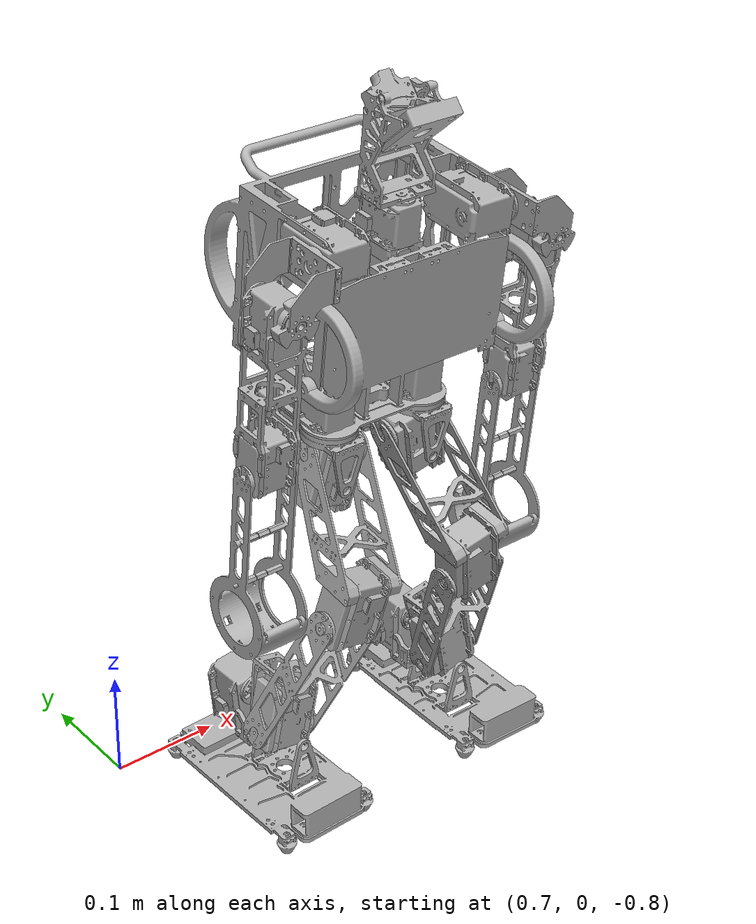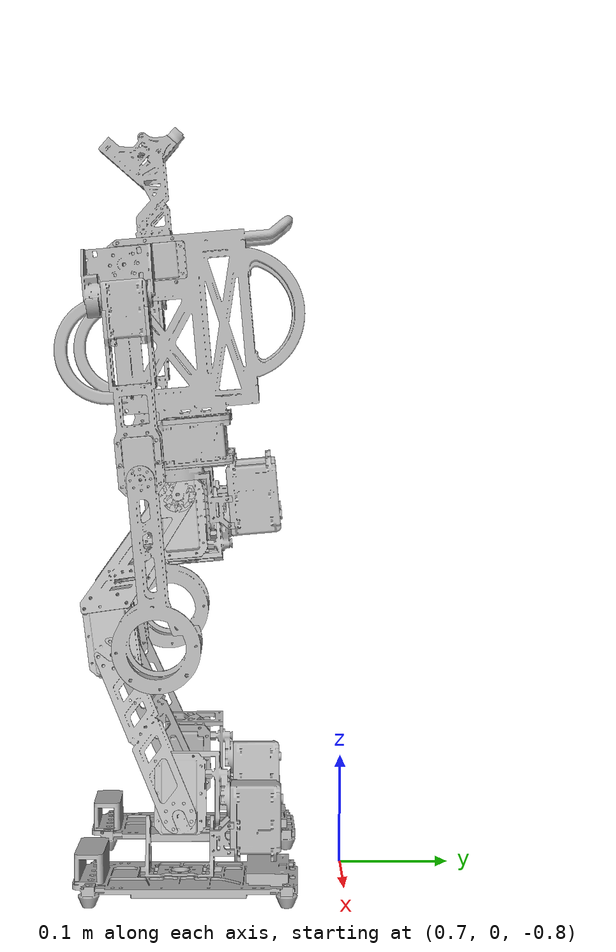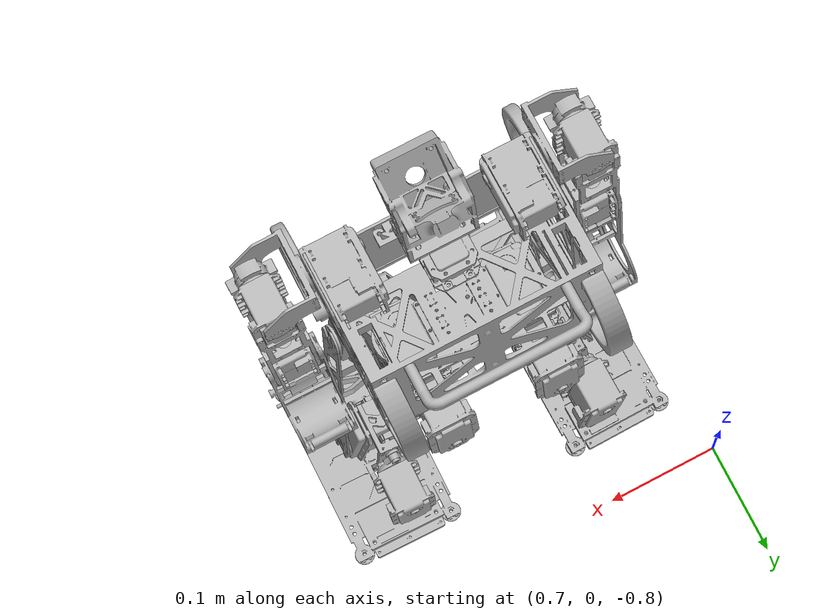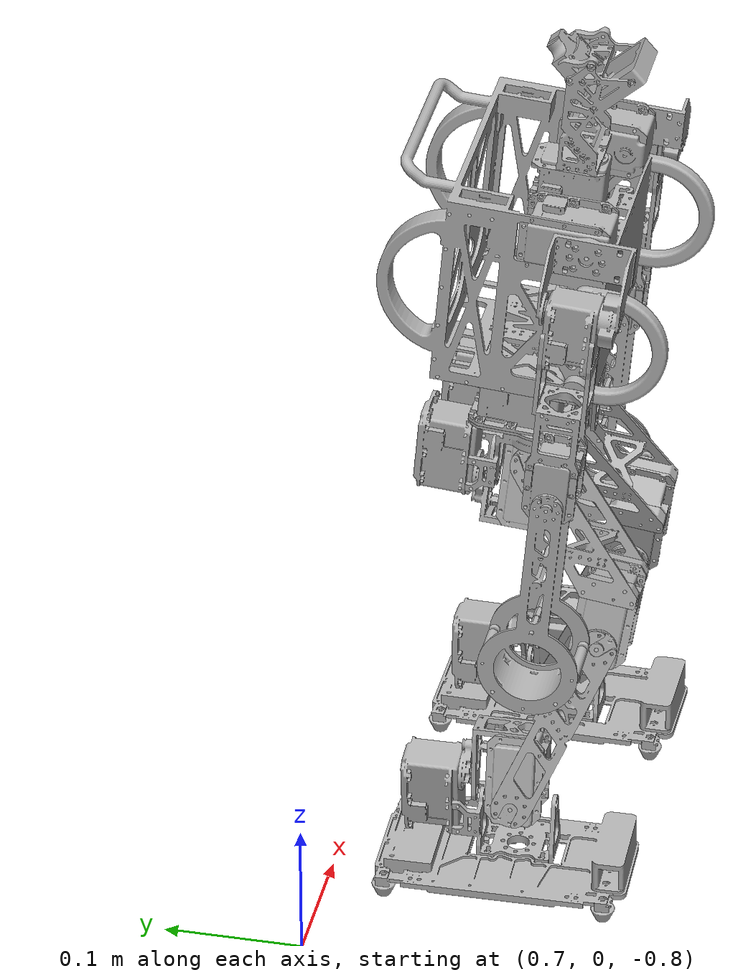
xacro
<?xml version="1.0" ?>
<robot name="robit_humanoid_offset_22DOF" xmlns:xacro="http://www.ros.org/wiki/xacro">

<xacro:include filename="$(find robit_humanoid_offset_22DOF_description)/urdf/materials.xacro" />
<xacro:include filename="$(find robit_humanoid_offset_22DOF_description)/urdf/robit_humanoid_offset_22DOF.trans" />
<xacro:include filename="$(find robit_humanoid_offset_22DOF_description)/urdf/robit_humanoid_offset_22DOF.gazebo" />
<link name="base_link">
  <inertial>
    <origin xyz="0.8686704659900684 -0.12225178221029383 -0.3166063048759885" rpy="0 0 0"/>
    <mass value="0.7575472164622242"/>
    <inertia ixx="0.004242" iyy="0.005737" izz="0.005559" ixy="-2e-06" iyz="-0.000575" ixz="6e-06"/>
  </inertial>
  <visual>
    <origin xyz="0 0 0" rpy="0 0 0"/>
    <geometry>
      <mesh filename="file://$(find robit_humanoid_offset_22DOF_description)/meshes/base_link.stl" scale="0.001 0.001 0.001"/>
    </geometry>
    <material name="silver"/>
  </visual>
  <collision>
    <origin xyz="0 0 0" rpy="0 0 0"/>
    <geometry>
      <mesh filename="file://$(find robit_humanoid_offset_22DOF_description)/meshes/base_link.stl" scale="0.001 0.001 0.001"/>
    </geometry>
  </collision>
</link>

<link name="MX_1_1">
  <inertial>
    <origin xyz="0.017028076208026932 0.020926648516215868 -0.015751572139332204" rpy="0 0 0"/>
    <mass value="0.554105246676411"/>
    <inertia ixx="0.000191" iyy="0.000126" izz="0.000223" ixy="-2e-06" iyz="-8e-06" ixz="0.0"/>
  </inertial>
  <visual>
    <origin xyz="-0.78262 0.187467 0.237925" rpy="0 0 0"/>
    <geometry>
      <mesh filename="file://$(find robit_humanoid_offset_22DOF_description)/meshes/MX_1_1.stl" scale="0.001 0.001 0.001"/>
    </geometry>
    <material name="silver"/>
  </visual>
  <collision>
    <origin xyz="-0.78262 0.187467 0.237925" rpy="0 0 0"/>
    <geometry>
      <mesh filename="file://$(find robit_humanoid_offset_22DOF_description)/meshes/MX_1_1.stl" scale="0.001 0.001 0.001"/>
    </geometry>
  </collision>
</link>

<link name="MX_0_1">
  <inertial>
    <origin xyz="-0.017191337786963357 0.021127357019474907 -0.015299758735974472" rpy="0 0 0"/>
    <mass value="0.5541052761471819"/>
    <inertia ixx="0.000191" iyy="0.000126" izz="0.000222" ixy="2e-06" iyz="-9e-06" ixz="0.0"/>
  </inertial>
  <visual>
    <origin xyz="-0.955618 0.187467 0.238835" rpy="0 0 0"/>
    <geometry>
      <mesh filename="file://$(find robit_humanoid_offset_22DOF_description)/meshes/MX_0_1.stl" scale="0.001 0.001 0.001"/>
    </geometry>
    <material name="silver"/>
  </visual>
  <collision>
    <origin xyz="-0.955618 0.187467 0.238835" rpy="0 0 0"/>
    <geometry>
      <mesh filename="file://$(find robit_humanoid_offset_22DOF_description)/meshes/MX_0_1.stl" scale="0.001 0.001 0.001"/>
    </geometry>
  </collision>
</link>

<link name="MX_12_1">
  <inertial>
    <origin xyz="-0.01707394332128609 0.018139780080411533 0.018853103619291822" rpy="0 0 0"/>
    <mass value="0.5541053265332864"/>
    <inertia ixx="0.000223" iyy="0.000126" izz="0.00019" ixy="-1e-06" iyz="-8e-06" ixz="-0.0"/>
  </inertial>
  <visual>
    <origin xyz="-0.930474 0.147652 0.418178" rpy="0 0 0"/>
    <geometry>
      <mesh filename="file://$(find robit_humanoid_offset_22DOF_description)/meshes/MX_12_1.stl" scale="0.001 0.001 0.001"/>
    </geometry>
    <material name="silver"/>
  </visual>
  <collision>
    <origin xyz="-0.930474 0.147652 0.418178" rpy="0 0 0"/>
    <geometry>
      <mesh filename="file://$(find robit_humanoid_offset_22DOF_description)/meshes/MX_12_1.stl" scale="0.001 0.001 0.001"/>
    </geometry>
  </collision>
</link>

<link name="MX_13_1">
  <inertial>
    <origin xyz="-0.01707369816831017 0.018139780067854078 0.01885252307943458" rpy="0 0 0"/>
    <mass value="0.554105326533287"/>
    <inertia ixx="0.000223" iyy="0.000126" izz="0.00019" ixy="-1e-06" iyz="-8e-06" ixz="-0.0"/>
  </inertial>
  <visual>
    <origin xyz="-0.840475 0.147652 0.417704" rpy="0 0 0"/>
    <geometry>
      <mesh filename="file://$(find robit_humanoid_offset_22DOF_description)/meshes/MX_13_1.stl" scale="0.001 0.001 0.001"/>
    </geometry>
    <material name="silver"/>
  </visual>
  <collision>
    <origin xyz="-0.840475 0.147652 0.417704" rpy="0 0 0"/>
    <geometry>
      <mesh filename="file://$(find robit_humanoid_offset_22DOF_description)/meshes/MX_13_1.stl" scale="0.001 0.001 0.001"/>
    </geometry>
  </collision>
</link>

<link name="MX_22_1">
  <inertial>
    <origin xyz="0.0150852798807658 0.01469623858131483 0.016166391724097395" rpy="0 0 0"/>
    <mass value="0.33837900664078474"/>
    <inertia ixx="9.5e-05" iyy="5.8e-05" izz="8.1e-05" ixy="-0.0" iyz="-1e-06" ixz="-0.0"/>
  </inertial>
  <visual>
    <origin xyz="-0.853969 0.169212 0.266818" rpy="0 0 0"/>
    <geometry>
      <mesh filename="file://$(find robit_humanoid_offset_22DOF_description)/meshes/MX_22_1.stl" scale="0.001 0.001 0.001"/>
    </geometry>
    <material name="silver"/>
  </visual>
  <collision>
    <origin xyz="-0.853969 0.169212 0.266818" rpy="0 0 0"/>
    <geometry>
      <mesh filename="file://$(find robit_humanoid_offset_22DOF_description)/meshes/MX_22_1.stl" scale="0.001 0.001 0.001"/>
    </geometry>
  </collision>
</link>

<link name="Head_1">
  <inertial>
    <origin xyz="0.0003136016932622221 -0.012661751483803496 0.057984005762357516" rpy="0 0 0"/>
    <mass value="0.11392178679543014"/>
    <inertia ixx="0.00011" iyy="0.000112" izz="6.2e-05" ixy="0.0" iyz="5e-06" ixz="-0.0"/>
  </inertial>
  <visual>
    <origin xyz="-0.869131 0.155818 0.236012" rpy="0 0 0"/>
    <geometry>
      <mesh filename="file://$(find robit_humanoid_offset_22DOF_description)/meshes/Head_1.stl" scale="0.001 0.001 0.001"/>
    </geometry>
    <material name="silver"/>
  </visual>
  <collision>
    <origin xyz="-0.869131 0.155818 0.236012" rpy="0 0 0"/>
    <geometry>
      <mesh filename="file://$(find robit_humanoid_offset_22DOF_description)/meshes/Head_1.stl" scale="0.001 0.001 0.001"/>
    </geometry>
  </collision>
</link>

<link name="Arm_First_Set_R_1">
  <inertial>
    <origin xyz="-0.022323331142347302 -0.018827889184840824 -0.011031267434460257" rpy="0 0 0"/>
    <mass value="0.049897110990033106"/>
    <inertia ixx="2.9e-05" iyy="2.3e-05" izz="3e-05" ixy="-4e-06" iyz="-5e-06" ixz="-8e-06"/>
  </inertial>
  <visual>
    <origin xyz="-0.779027 0.17213 0.255614" rpy="0 0 0"/>
    <geometry>
      <mesh filename="file://$(find robit_humanoid_offset_22DOF_description)/meshes/Arm_First_Set_R_1.stl" scale="0.001 0.001 0.001"/>
    </geometry>
    <material name="silver"/>
  </visual>
  <collision>
    <origin xyz="-0.779027 0.17213 0.255614" rpy="0 0 0"/>
    <geometry>
      <mesh filename="file://$(find robit_humanoid_offset_22DOF_description)/meshes/Arm_First_Set_R_1.stl" scale="0.001 0.001 0.001"/>
    </geometry>
  </collision>
</link>

<link name="Arm_First_Set_L_1">
  <inertial>
    <origin xyz="0.022207637719117268 -0.018833609842245164 -0.01124635126636464" rpy="0 0 0"/>
    <mass value="0.049897110993500735"/>
    <inertia ixx="2.9e-05" iyy="2.3e-05" izz="3e-05" ixy="3e-06" iyz="-5e-06" ixz="8e-06"/>
  </inertial>
  <visual>
    <origin xyz="-0.959025 0.171906 0.256509" rpy="0 0 0"/>
    <geometry>
      <mesh filename="file://$(find robit_humanoid_offset_22DOF_description)/meshes/Arm_First_Set_L_1.stl" scale="0.001 0.001 0.001"/>
    </geometry>
    <material name="silver"/>
  </visual>
  <collision>
    <origin xyz="-0.959025 0.171906 0.256509" rpy="0 0 0"/>
    <geometry>
      <mesh filename="file://$(find robit_humanoid_offset_22DOF_description)/meshes/Arm_First_Set_L_1.stl" scale="0.001 0.001 0.001"/>
    </geometry>
  </collision>
</link>

<link name="MX_2_1">
  <inertial>
    <origin xyz="-2.560734038370427e-06 0.01878601292025242 -0.009956748164695328" rpy="0 0 0"/>
    <mass value="0.3383780664042638"/>
    <inertia ixx="9.5e-05" iyy="8.1e-05" izz="5.9e-05" ixy="-0.0" iyz="3e-06" ixz="-0.0"/>
  </inertial>
  <visual>
    <origin xyz="-0.99489 0.19706 0.282317" rpy="0 0 0"/>
    <geometry>
      <mesh filename="file://$(find robit_humanoid_offset_22DOF_description)/meshes/MX_2_1.stl" scale="0.001 0.001 0.001"/>
    </geometry>
    <material name="silver"/>
  </visual>
  <collision>
    <origin xyz="-0.99489 0.19706 0.282317" rpy="0 0 0"/>
    <geometry>
      <mesh filename="file://$(find robit_humanoid_offset_22DOF_description)/meshes/MX_2_1.stl" scale="0.001 0.001 0.001"/>
    </geometry>
  </collision>
</link>

<link name="MX_3_1">
  <inertial>
    <origin xyz="-8.128424702324999e-06 0.01878673559343269 -0.009957168449236109" rpy="0 0 0"/>
    <mass value="0.3383780662889112"/>
    <inertia ixx="9.5e-05" iyy="8.1e-05" izz="5.9e-05" ixy="-0.0" iyz="3e-06" ixz="-0.0"/>
  </inertial>
  <visual>
    <origin xyz="-0.742893 0.197279 0.281062" rpy="0 0 0"/>
    <geometry>
      <mesh filename="file://$(find robit_humanoid_offset_22DOF_description)/meshes/MX_3_1.stl" scale="0.001 0.001 0.001"/>
    </geometry>
    <material name="silver"/>
  </visual>
  <collision>
    <origin xyz="-0.742893 0.197279 0.281062" rpy="0 0 0"/>
    <geometry>
      <mesh filename="file://$(find robit_humanoid_offset_22DOF_description)/meshes/MX_3_1.stl" scale="0.001 0.001 0.001"/>
    </geometry>
  </collision>
</link>

<link name="Arm_Mid_Set_R_1">
  <inertial>
    <origin xyz="0.01489417705266205 0.020021771357994406 -0.056821763453647534" rpy="0 0 0"/>
    <mass value="0.031794528277008835"/>
    <inertia ixx="3.3e-05" iyy="3.3e-05" izz="1.2e-05" ixy="0.0" iyz="2e-06" ixz="-0.0"/>
  </inertial>
  <visual>
    <origin xyz="-0.727877 0.193445 0.293253" rpy="0 0 0"/>
    <geometry>
      <mesh filename="file://$(find robit_humanoid_offset_22DOF_description)/meshes/Arm_Mid_Set_R_1.stl" scale="0.001 0.001 0.001"/>
    </geometry>
    <material name="silver"/>
  </visual>
  <collision>
    <origin xyz="-0.727877 0.193445 0.293253" rpy="0 0 0"/>
    <geometry>
      <mesh filename="file://$(find robit_humanoid_offset_22DOF_description)/meshes/Arm_Mid_Set_R_1.stl" scale="0.001 0.001 0.001"/>
    </geometry>
  </collision>
</link>

<link name="Arm_Mid_Set_L_1">
  <inertial>
    <origin xyz="-0.01501406146390949 0.020032227929952684 -0.0567865989623183" rpy="0 0 0"/>
    <mass value="0.03179452828169604"/>
    <inertia ixx="3.3e-05" iyy="3.3e-05" izz="1.2e-05" ixy="0.0" iyz="2e-06" ixz="-0.0"/>
  </inertial>
  <visual>
    <origin xyz="-1.00988 0.193237 0.294543" rpy="0 0 0"/>
    <geometry>
      <mesh filename="file://$(find robit_humanoid_offset_22DOF_description)/meshes/Arm_Mid_Set_L_1.stl" scale="0.001 0.001 0.001"/>
    </geometry>
    <material name="silver"/>
  </visual>
  <collision>
    <origin xyz="-1.00988 0.193237 0.294543" rpy="0 0 0"/>
    <geometry>
      <mesh filename="file://$(find robit_humanoid_offset_22DOF_description)/meshes/Arm_Mid_Set_L_1.stl" scale="0.001 0.001 0.001"/>
    </geometry>
  </collision>
</link>

<link name="MX_4_1">
  <inertial>
    <origin xyz="-0.015090668086649717 0.015030399216186846 0.0003819046085602462" rpy="0 0 0"/>
    <mass value="0.3383789909852501"/>
    <inertia ixx="8.1e-05" iyy="9.5e-05" izz="5.9e-05" ixy="-0.0" iyz="3e-06" ixz="1e-06"/>
  </inertial>
  <visual>
    <origin xyz="-1.009824 0.182935 0.412294" rpy="0 0 0"/>
    <geometry>
      <mesh filename="file://$(find robit_humanoid_offset_22DOF_description)/meshes/MX_4_1.stl" scale="0.001 0.001 0.001"/>
    </geometry>
    <material name="silver"/>
  </visual>
  <collision>
    <origin xyz="-1.009824 0.182935 0.412294" rpy="0 0 0"/>
    <geometry>
      <mesh filename="file://$(find robit_humanoid_offset_22DOF_description)/meshes/MX_4_1.stl" scale="0.001 0.001 0.001"/>
    </geometry>
  </collision>
</link>

<link name="MX_5_1">
  <inertial>
    <origin xyz="0.01510315381589944 0.015020094798293276 0.0003456087560677057" rpy="0 0 0"/>
    <mass value="0.33837899111351555"/>
    <inertia ixx="8.1e-05" iyy="9.5e-05" izz="5.9e-05" ixy="0.0" iyz="3e-06" ixz="-1e-06"/>
  </inertial>
  <visual>
    <origin xyz="-0.727662 0.183143 0.411003" rpy="0 0 0"/>
    <geometry>
      <mesh filename="file://$(find robit_humanoid_offset_22DOF_description)/meshes/MX_5_1.stl" scale="0.001 0.001 0.001"/>
    </geometry>
    <material name="silver"/>
  </visual>
  <collision>
    <origin xyz="-0.727662 0.183143 0.411003" rpy="0 0 0"/>
    <geometry>
      <mesh filename="file://$(find robit_humanoid_offset_22DOF_description)/meshes/MX_5_1.stl" scale="0.001 0.001 0.001"/>
    </geometry>
  </collision>
</link>

<link name="Arm_End_set_R_1">
  <inertial>
    <origin xyz="0.018192637159496927 0.015261821188748359 -0.11925214012770607" rpy="0 0 0"/>
    <mass value="0.10457651242145385"/>
    <inertia ixx="0.000302" iyy="0.000288" izz="7.1e-05" ixy="-0.0" iyz="1.9e-05" ixz="1e-06"/>
  </inertial>
  <visual>
    <origin xyz="-0.724894 0.17182 0.423599" rpy="0 0 0"/>
    <geometry>
      <mesh filename="file://$(find robit_humanoid_offset_22DOF_description)/meshes/Arm_End_set_R_1.stl" scale="0.001 0.001 0.001"/>
    </geometry>
    <material name="silver"/>
  </visual>
  <collision>
    <origin xyz="-0.724894 0.17182 0.423599" rpy="0 0 0"/>
    <geometry>
      <mesh filename="file://$(find robit_humanoid_offset_22DOF_description)/meshes/Arm_End_set_R_1.stl" scale="0.001 0.001 0.001"/>
    </geometry>
  </collision>
</link>

<link name="Arm_End_Set_L_1">
  <inertial>
    <origin xyz="-0.018324093128253005 0.015088736723597673 -0.11930920899394137" rpy="0 0 0"/>
    <mass value="0.10397468487760392"/>
    <inertia ixx="0.000302" iyy="0.000287" izz="7e-05" ixy="-0.0" iyz="1.9e-05" ixz="-2e-06"/>
  </inertial>
  <visual>
    <origin xyz="-1.012563 0.171596 0.424914" rpy="0 0 0"/>
    <geometry>
      <mesh filename="file://$(find robit_humanoid_offset_22DOF_description)/meshes/Arm_End_Set_L_1.stl" scale="0.001 0.001 0.001"/>
    </geometry>
    <material name="silver"/>
  </visual>
  <collision>
    <origin xyz="-1.012563 0.171596 0.424914" rpy="0 0 0"/>
    <geometry>
      <mesh filename="file://$(find robit_humanoid_offset_22DOF_description)/meshes/Arm_End_Set_L_1.stl" scale="0.001 0.001 0.001"/>
    </geometry>
  </collision>
</link>

<link name="ABD_Part_Up_R_1">
  <inertial>
    <origin xyz="-5.000945271205204e-05 0.010566726907864421 -0.009087067631465107" rpy="0 0 0"/>
    <mass value="0.04869080708896628"/>
    <inertia ixx="2.8e-05" iyy="1.7e-05" izz="2.7e-05" ixy="0.0" iyz="5e-06" ixz="-0.0"/>
  </inertial>
  <visual>
    <origin xyz="-0.823167 0.147884 0.424283" rpy="0 0 0"/>
    <geometry>
      <mesh filename="file://$(find robit_humanoid_offset_22DOF_description)/meshes/ABD_Part_Up_R_1.stl" scale="0.001 0.001 0.001"/>
    </geometry>
    <material name="silver"/>
  </visual>
  <collision>
    <origin xyz="-0.823167 0.147884 0.424283" rpy="0 0 0"/>
    <geometry>
      <mesh filename="file://$(find robit_humanoid_offset_22DOF_description)/meshes/ABD_Part_Up_R_1.stl" scale="0.001 0.001 0.001"/>
    </geometry>
  </collision>
</link>

<link name="ABD_Part_Up_L_1">
  <inertial>
    <origin xyz="-4.925460568805384e-05 0.010566726920422126 -0.009087487091607616" rpy="0 0 0"/>
    <mass value="0.04869080708896628"/>
    <inertia ixx="2.8e-05" iyy="1.7e-05" izz="2.7e-05" ixy="0.0" iyz="5e-06" ixz="-0.0"/>
  </inertial>
  <visual>
    <origin xyz="-0.913165 0.147884 0.424756" rpy="0 0 0"/>
    <geometry>
      <mesh filename="file://$(find robit_humanoid_offset_22DOF_description)/meshes/ABD_Part_Up_L_1.stl" scale="0.001 0.001 0.001"/>
    </geometry>
    <material name="silver"/>
  </visual>
  <collision>
    <origin xyz="-0.913165 0.147884 0.424756" rpy="0 0 0"/>
    <geometry>
      <mesh filename="file://$(find robit_humanoid_offset_22DOF_description)/meshes/ABD_Part_Up_L_1.stl" scale="0.001 0.001 0.001"/>
    </geometry>
  </collision>
</link>

<link name="MX_11_1">
  <inertial>
    <origin xyz="0.017284038088199227 0.015327435579178122 0.02103155268758483" rpy="0 0 0"/>
    <mass value="0.5541053434876537"/>
    <inertia ixx="0.000223" iyy="0.000191" izz="0.000126" ixy="-0.0" iyz="4e-06" ixz="0.0"/>
  </inertial>
  <visual>
    <origin xyz="-0.805637 0.094727 0.465382" rpy="0 0 0"/>
    <geometry>
      <mesh filename="file://$(find robit_humanoid_offset_22DOF_description)/meshes/MX_11_1.stl" scale="0.001 0.001 0.001"/>
    </geometry>
    <material name="silver"/>
  </visual>
  <collision>
    <origin xyz="-0.805637 0.094727 0.465382" rpy="0 0 0"/>
    <geometry>
      <mesh filename="file://$(find robit_humanoid_offset_22DOF_description)/meshes/MX_11_1.stl" scale="0.001 0.001 0.001"/>
    </geometry>
  </collision>
</link>

<link name="MX_10_1">
  <inertial>
    <origin xyz="0.01728379293522342 0.0153274355917358 0.0210311332274421" rpy="0 0 0"/>
    <mass value="0.5541053434876543"/>
    <inertia ixx="0.000223" iyy="0.000191" izz="0.000126" ixy="-0.0" iyz="4e-06" ixz="0.0"/>
  </inertial>
  <visual>
    <origin xyz="-0.895636 0.094727 0.465855" rpy="0 0 0"/>
    <geometry>
      <mesh filename="file://$(find robit_humanoid_offset_22DOF_description)/meshes/MX_10_1.stl" scale="0.001 0.001 0.001"/>
    </geometry>
    <material name="silver"/>
  </visual>
  <collision>
    <origin xyz="-0.895636 0.094727 0.465855" rpy="0 0 0"/>
    <geometry>
      <mesh filename="file://$(find robit_humanoid_offset_22DOF_description)/meshes/MX_10_1.stl" scale="0.001 0.001 0.001"/>
    </geometry>
  </collision>
</link>

<link name="ABD_Roll_L_1">
  <inertial>
    <origin xyz="0.0028714747005363916 -0.004690434506536417 -0.006634093423106224" rpy="0 0 0"/>
    <mass value="0.023473134328333187"/>
    <inertia ixx="1e-05" iyy="7e-06" izz="5e-06" ixy="1e-06" iyz="-3e-06" ixz="1e-06"/>
  </inertial>
  <visual>
    <origin xyz="-0.912891 0.106944 0.469434" rpy="0 0 0"/>
    <geometry>
      <mesh filename="file://$(find robit_humanoid_offset_22DOF_description)/meshes/ABD_Roll_L_1.stl" scale="0.001 0.001 0.001"/>
    </geometry>
    <material name="silver"/>
  </visual>
  <collision>
    <origin xyz="-0.912891 0.106944 0.469434" rpy="0 0 0"/>
    <geometry>
      <mesh filename="file://$(find robit_humanoid_offset_22DOF_description)/meshes/ABD_Roll_L_1.stl" scale="0.001 0.001 0.001"/>
    </geometry>
  </collision>
</link>

<link name="ABD_Roll_R_1">
  <inertial>
    <origin xyz="-0.0027266326508511574 -0.004686458119291248 -0.006649691260913082" rpy="0 0 0"/>
    <mass value="0.023473128335311236"/>
    <inertia ixx="1e-05" iyy="7e-06" izz="5e-06" ixy="-1e-06" iyz="-3e-06" ixz="-1e-06"/>
  </inertial>
  <visual>
    <origin xyz="-0.822892 0.106944 0.468961" rpy="0 0 0"/>
    <geometry>
      <mesh filename="file://$(find robit_humanoid_offset_22DOF_description)/meshes/ABD_Roll_R_1.stl" scale="0.001 0.001 0.001"/>
    </geometry>
    <material name="silver"/>
  </visual>
  <collision>
    <origin xyz="-0.822892 0.106944 0.468961" rpy="0 0 0"/>
    <geometry>
      <mesh filename="file://$(find robit_humanoid_offset_22DOF_description)/meshes/ABD_Roll_R_1.stl" scale="0.001 0.001 0.001"/>
    </geometry>
  </collision>
</link>

<link name="MX_15_1">
  <inertial>
    <origin xyz="0.019615388092973474 -0.013524891129044536 0.027935772628569777" rpy="0 0 0"/>
    <mass value="0.6889798589115284"/>
    <inertia ixx="0.000258" iyy="0.000333" izz="0.000191" ixy="1e-06" iyz="1.3e-05" ixz="-1.1e-05"/>
  </inertial>
  <visual>
    <origin xyz="-0.804251 0.125733 0.488927" rpy="0 0 0"/>
    <geometry>
      <mesh filename="file://$(find robit_humanoid_offset_22DOF_description)/meshes/MX_15_1.stl" scale="0.001 0.001 0.001"/>
    </geometry>
    <material name="silver"/>
  </visual>
  <collision>
    <origin xyz="-0.804251 0.125733 0.488927" rpy="0 0 0"/>
    <geometry>
      <mesh filename="file://$(find robit_humanoid_offset_22DOF_description)/meshes/MX_15_1.stl" scale="0.001 0.001 0.001"/>
    </geometry>
  </collision>
</link>

<link name="MX_14_1">
  <inertial>
    <origin xyz="-0.019936554904438464 0.008487615323395231 0.029641272504702" rpy="0 0 0"/>
    <mass value="0.6889805514559392"/>
    <inertia ixx="0.000258" iyy="0.000333" izz="0.000191" ixy="-1e-06" iyz="1.2e-05" ixz="1.2e-05"/>
  </inertial>
  <visual>
    <origin xyz="-0.931763 0.147682 0.491133" rpy="0 0 0"/>
    <geometry>
      <mesh filename="file://$(find robit_humanoid_offset_22DOF_description)/meshes/MX_14_1.stl" scale="0.001 0.001 0.001"/>
    </geometry>
    <material name="silver"/>
  </visual>
  <collision>
    <origin xyz="-0.931763 0.147682 0.491133" rpy="0 0 0"/>
    <geometry>
      <mesh filename="file://$(find robit_humanoid_offset_22DOF_description)/meshes/MX_14_1.stl" scale="0.001 0.001 0.001"/>
    </geometry>
  </collision>
</link>

<link name="Right_Upper_Leg_R_1">
  <inertial>
    <origin xyz="0.014756186930879212 -0.032908726633636975 -0.058847239524641826" rpy="0 0 0"/>
    <mass value="0.04892624295768373"/>
    <inertia ixx="6.5e-05" iyy="7e-05" izz="5.4e-05" ixy="-5e-06" iyz="-2.6e-05" ixz="-2e-06"/>
  </inertial>
  <visual>
    <origin xyz="-0.801333 0.147424 0.444421" rpy="0 0 0"/>
    <geometry>
      <mesh filename="file://$(find robit_humanoid_offset_22DOF_description)/meshes/Right_Upper_Leg_R_1.stl" scale="0.001 0.001 0.001"/>
    </geometry>
    <material name="silver"/>
  </visual>
  <collision>
    <origin xyz="-0.801333 0.147424 0.444421" rpy="0 0 0"/>
    <geometry>
      <mesh filename="file://$(find robit_humanoid_offset_22DOF_description)/meshes/Right_Upper_Leg_R_1.stl" scale="0.001 0.001 0.001"/>
    </geometry>
  </collision>
</link>

<link name="Right_Upper_Leg_L_1">
  <inertial>
    <origin xyz="-0.016058551819024047 -0.03288417305413277 -0.059412230577435554" rpy="0 0 0"/>
    <mass value="0.048926242957685655"/>
    <inertia ixx="6.5e-05" iyy="7e-05" izz="5.4e-05" ixy="6e-06" iyz="-2.6e-05" ixz="2e-06"/>
  </inertial>
  <visual>
    <origin xyz="-0.934094 0.147345 0.444679" rpy="0 0 0"/>
    <geometry>
      <mesh filename="file://$(find robit_humanoid_offset_22DOF_description)/meshes/Right_Upper_Leg_L_1.stl" scale="0.001 0.001 0.001"/>
    </geometry>
    <material name="silver"/>
  </visual>
  <collision>
    <origin xyz="-0.934094 0.147345 0.444679" rpy="0 0 0"/>
    <geometry>
      <mesh filename="file://$(find robit_humanoid_offset_22DOF_description)/meshes/Right_Upper_Leg_L_1.stl" scale="0.001 0.001 0.001"/>
    </geometry>
  </collision>
</link>

<link name="MX_17_1">
  <inertial>
    <origin xyz="-0.02122079143254263 0.020243198070698964 -0.018073818936494512" rpy="0 0 0"/>
    <mass value="0.6889798227972256"/>
    <inertia ixx="0.000256" iyy="0.000331" izz="0.000194" ixy="3e-06" iyz="2e-05" ixz="-1.6e-05"/>
  </inertial>
  <visual>
    <origin xyz="-0.826688 0.215592 0.540105" rpy="0 0 0"/>
    <geometry>
      <mesh filename="file://$(find robit_humanoid_offset_22DOF_description)/meshes/MX_17_1.stl" scale="0.001 0.001 0.001"/>
    </geometry>
    <material name="silver"/>
  </visual>
  <collision>
    <origin xyz="-0.826688 0.215592 0.540105" rpy="0 0 0"/>
    <geometry>
      <mesh filename="file://$(find robit_humanoid_offset_22DOF_description)/meshes/MX_17_1.stl" scale="0.001 0.001 0.001"/>
    </geometry>
  </collision>
</link>

<link name="MX_16_1">
  <inertial>
    <origin xyz="0.021815460046025748 -0.01411048605908305 -0.02262191023225335" rpy="0 0 0"/>
    <mass value="0.688979537589562"/>
    <inertia ixx="0.000256" iyy="0.000331" izz="0.000195" ixy="-3e-06" iyz="1.9e-05" ixz="1.7e-05"/>
  </inertial>
  <visual>
    <origin xyz="-0.907415 0.181202 0.536267" rpy="0 0 0"/>
    <geometry>
      <mesh filename="file://$(find robit_humanoid_offset_22DOF_description)/meshes/MX_16_1.stl" scale="0.001 0.001 0.001"/>
    </geometry>
    <material name="silver"/>
  </visual>
  <collision>
    <origin xyz="-0.907415 0.181202 0.536267" rpy="0 0 0"/>
    <geometry>
      <mesh filename="file://$(find robit_humanoid_offset_22DOF_description)/meshes/MX_16_1.stl" scale="0.001 0.001 0.001"/>
    </geometry>
  </collision>
</link>

<link name="Lower_Leg_R_1">
  <inertial>
    <origin xyz="0.012859586416372748 0.04433791144880847 -0.06765868622153781" rpy="0 0 0"/>
    <mass value="0.037747111133187655"/>
    <inertia ixx="6.8e-05" iyy="8.1e-05" izz="3.8e-05" ixy="4e-06" iyz="2.2e-05" ixz="-7e-06"/>
  </inertial>
  <visual>
    <origin xyz="-0.776891 0.21095 0.566728" rpy="0 0 0"/>
    <geometry>
      <mesh filename="file://$(find robit_humanoid_offset_22DOF_description)/meshes/Lower_Leg_R_1.stl" scale="0.001 0.001 0.001"/>
    </geometry>
    <material name="silver"/>
  </visual>
  <collision>
    <origin xyz="-0.776891 0.21095 0.566728" rpy="0 0 0"/>
    <geometry>
      <mesh filename="file://$(find robit_humanoid_offset_22DOF_description)/meshes/Lower_Leg_R_1.stl" scale="0.001 0.001 0.001"/>
    </geometry>
  </collision>
</link>

<link name="Lower_Leg_L_1">
  <inertial>
    <origin xyz="-0.012093042120833508 0.04431275586741573 -0.06779624316738853" rpy="0 0 0"/>
    <mass value="0.03774711113318721"/>
    <inertia ixx="6.8e-05" iyy="8.1e-05" izz="3.8e-05" ixy="-4e-06" iyz="2.2e-05" ixz="7e-06"/>
  </inertial>
  <visual>
    <origin xyz="-0.957933 0.210937 0.567125" rpy="0 0 0"/>
    <geometry>
      <mesh filename="file://$(find robit_humanoid_offset_22DOF_description)/meshes/Lower_Leg_L_1.stl" scale="0.001 0.001 0.001"/>
    </geometry>
    <material name="silver"/>
  </visual>
  <collision>
    <origin xyz="-0.957933 0.210937 0.567125" rpy="0 0 0"/>
    <geometry>
      <mesh filename="file://$(find robit_humanoid_offset_22DOF_description)/meshes/Lower_Leg_L_1.stl" scale="0.001 0.001 0.001"/>
    </geometry>
  </collision>
</link>

<link name="MX_19_1">
  <inertial>
    <origin xyz="0.028577477582532707 0.0004492334398361886 0.010114640977875955" rpy="0 0 0"/>
    <mass value="0.6889798227036441"/>
    <inertia ixx="0.000256" iyy="0.000334" izz="0.000192" ixy="-1e-06" iyz="0.0" ixz="-1.6e-05"/>
  </inertial>
  <visual>
    <origin xyz="-0.750813 0.139152 0.694439" rpy="0 0 0"/>
    <geometry>
      <mesh filename="file://$(find robit_humanoid_offset_22DOF_description)/meshes/MX_19_1.stl" scale="0.001 0.001 0.001"/>
    </geometry>
    <material name="silver"/>
  </visual>
  <collision>
    <origin xyz="-0.750813 0.139152 0.694439" rpy="0 0 0"/>
    <geometry>
      <mesh filename="file://$(find robit_humanoid_offset_22DOF_description)/meshes/MX_19_1.stl" scale="0.001 0.001 0.001"/>
    </geometry>
  </collision>
</link>

<link name="MX_18_1">
  <inertial>
    <origin xyz="-0.028685457869356612 0.0005212612570756336 0.009799758174139028" rpy="0 0 0"/>
    <mass value="0.6889795376297454"/>
    <inertia ixx="0.000256" iyy="0.000334" izz="0.000192" ixy="1e-06" iyz="-0.0" ixz="1.7e-05"/>
  </inertial>
  <visual>
    <origin xyz="-0.985484 0.139238 0.694542" rpy="0 0 0"/>
    <geometry>
      <mesh filename="file://$(find robit_humanoid_offset_22DOF_description)/meshes/MX_18_1.stl" scale="0.001 0.001 0.001"/>
    </geometry>
    <material name="silver"/>
  </visual>
  <collision>
    <origin xyz="-0.985484 0.139238 0.694542" rpy="0 0 0"/>
    <geometry>
      <mesh filename="file://$(find robit_humanoid_offset_22DOF_description)/meshes/MX_18_1.stl" scale="0.001 0.001 0.001"/>
    </geometry>
  </collision>
</link>

<link name="ABD_Roll_lower_R_1">
  <inertial>
    <origin xyz="0.008928769011485871 0.03740333720743898 -0.019665367479363316" rpy="0 0 0"/>
    <mass value="0.023474555796662477"/>
    <inertia ixx="1.1e-05" iyy="8e-06" izz="6e-06" ixy="1e-06" iyz="4e-06" ixz="-1e-06"/>
  </inertial>
  <visual>
    <origin xyz="-0.772585 0.149905 0.650027" rpy="0 0 0"/>
    <geometry>
      <mesh filename="file://$(find robit_humanoid_offset_22DOF_description)/meshes/ABD_Roll_lower_R_1.stl" scale="0.001 0.001 0.001"/>
    </geometry>
    <material name="silver"/>
  </visual>
  <collision>
    <origin xyz="-0.772585 0.149905 0.650027" rpy="0 0 0"/>
    <geometry>
      <mesh filename="file://$(find robit_humanoid_offset_22DOF_description)/meshes/ABD_Roll_lower_R_1.stl" scale="0.001 0.001 0.001"/>
    </geometry>
  </collision>
</link>

<link name="ABD_Roll_lower_L_1">
  <inertial>
    <origin xyz="-0.008641671084632763 0.03742046824828363 -0.019762485908743188" rpy="0 0 0"/>
    <mass value="0.023474555796669207"/>
    <inertia ixx="1.1e-05" iyy="8e-06" izz="6e-06" ixy="-1e-06" iyz="4e-06" ixz="1e-06"/>
  </inertial>
  <visual>
    <origin xyz="-0.963203 0.149872 0.650354" rpy="0 0 0"/>
    <geometry>
      <mesh filename="file://$(find robit_humanoid_offset_22DOF_description)/meshes/ABD_Roll_lower_L_1.stl" scale="0.001 0.001 0.001"/>
    </geometry>
    <material name="silver"/>
  </visual>
  <collision>
    <origin xyz="-0.963203 0.149872 0.650354" rpy="0 0 0"/>
    <geometry>
      <mesh filename="file://$(find robit_humanoid_offset_22DOF_description)/meshes/ABD_Roll_lower_L_1.stl" scale="0.001 0.001 0.001"/>
    </geometry>
  </collision>
</link>

<link name="MX_20_1">
  <inertial>
    <origin xyz="0.00038774366257809945 0.02063640705055038 -0.015555494265389491" rpy="0 0 0"/>
    <mass value="0.5541053259460103"/>
    <inertia ixx="0.000223" iyy="0.000191" izz="0.000126" ixy="-1e-06" iyz="2e-06" ixz="0.0"/>
  </inertial>
  <visual>
    <origin xyz="-0.958086 0.098261 0.686299" rpy="0 0 0"/>
    <geometry>
      <mesh filename="file://$(find robit_humanoid_offset_22DOF_description)/meshes/MX_20_1.stl" scale="0.001 0.001 0.001"/>
    </geometry>
    <material name="silver"/>
  </visual>
  <collision>
    <origin xyz="-0.958086 0.098261 0.686299" rpy="0 0 0"/>
    <geometry>
      <mesh filename="file://$(find robit_humanoid_offset_22DOF_description)/meshes/MX_20_1.stl" scale="0.001 0.001 0.001"/>
    </geometry>
  </collision>
</link>

<link name="MX_21_1">
  <inertial>
    <origin xyz="0.001388581542334122 0.020662114421751268 -0.015463551750032889" rpy="0 0 0"/>
    <mass value="0.5541053307315932"/>
    <inertia ixx="0.000222" iyy="0.000191" izz="0.000127" ixy="0.0" iyz="2e-06" ixz="1.1e-05"/>
  </inertial>
  <visual>
    <origin xyz="-0.778193 0.098304 0.685912" rpy="0 0 0"/>
    <geometry>
      <mesh filename="file://$(find robit_humanoid_offset_22DOF_description)/meshes/MX_21_1.stl" scale="0.001 0.001 0.001"/>
    </geometry>
    <material name="silver"/>
  </visual>
  <collision>
    <origin xyz="-0.778193 0.098304 0.685912" rpy="0 0 0"/>
    <geometry>
      <mesh filename="file://$(find robit_humanoid_offset_22DOF_description)/meshes/MX_21_1.stl" scale="0.001 0.001 0.001"/>
    </geometry>
  </collision>
</link>

<link name="Right_Foot_ABD_1">
  <inertial>
    <origin xyz="0.007016044539544741 -0.03900559113247545 -0.040159109867077936" rpy="0 0 0"/>
    <mass value="0.3034904167532816"/>
    <inertia ixx="0.001116" iyy="0.000226" izz="0.001287" ixy="1.5e-05" iyz="3e-05" ixz="-9e-06"/>
  </inertial>
  <visual>
    <origin xyz="-0.762942 0.095024 0.705716" rpy="0 0 0"/>
    <geometry>
      <mesh filename="file://$(find robit_humanoid_offset_22DOF_description)/meshes/Right_Foot_ABD_1.stl" scale="0.001 0.001 0.001"/>
    </geometry>
    <material name="silver"/>
  </visual>
  <collision>
    <origin xyz="-0.762942 0.095024 0.705716" rpy="0 0 0"/>
    <geometry>
      <mesh filename="file://$(find robit_humanoid_offset_22DOF_description)/meshes/Right_Foot_ABD_1.stl" scale="0.001 0.001 0.001"/>
    </geometry>
  </collision>
</link>

<link name="Left_Foot_ABD_1">
  <inertial>
    <origin xyz="-0.006321169550938088 -0.038998960695007176 -0.04028376040562687" rpy="0 0 0"/>
    <mass value="0.30349095742393284"/>
    <inertia ixx="0.001116" iyy="0.000226" izz="0.001287" ixy="-1.7e-05" iyz="3e-05" ixz="5e-06"/>
  </inertial>
  <visual>
    <origin xyz="-0.975456 0.095047 0.704286" rpy="0 0 0"/>
    <geometry>
      <mesh filename="file://$(find robit_humanoid_offset_22DOF_description)/meshes/Left_Foot_ABD_1.stl" scale="0.001 0.001 0.001"/>
    </geometry>
    <material name="silver"/>
  </visual>
  <collision>
    <origin xyz="-0.975456 0.095047 0.704286" rpy="0 0 0"/>
    <geometry>
      <mesh filename="file://$(find robit_humanoid_offset_22DOF_description)/meshes/Left_Foot_ABD_1.stl" scale="0.001 0.001 0.001"/>
    </geometry>
  </collision>
</link>

<joint name="DXL_1" type="fixed">
  <origin xyz="0.78262 -0.187467 -0.237925" rpy="0 0 0"/>
  <parent link="base_link"/>
  <child link="MX_1_1"/>
</joint>

<joint name="DXL_0" type="fixed">
  <origin xyz="0.955618 -0.187467 -0.238835" rpy="0 0 0"/>
  <parent link="base_link"/>
  <child link="MX_0_1"/>
</joint>

<joint name="DXL_12" type="fixed">
  <origin xyz="0.930474 -0.147652 -0.418178" rpy="0 0 0"/>
  <parent link="base_link"/>
  <child link="MX_12_1"/>
</joint>

<joint name="DXL_13" type="fixed">
  <origin xyz="0.840475 -0.147652 -0.417704" rpy="0 0 0"/>
  <parent link="base_link"/>
  <child link="MX_13_1"/>
</joint>

<joint name="DXL_22" type="fixed">
  <origin xyz="0.853969 -0.169212 -0.266818" rpy="0 0 0"/>
  <parent link="base_link"/>
  <child link="MX_22_1"/>
</joint>

<joint name="rotate_22" type="continuous">
  <origin xyz="0.015162 0.013394 0.030806" rpy="0 0 0"/>
  <parent link="MX_22_1"/>
  <child link="Head_1"/>
  <axis xyz="0.00526 -1e-06 0.999986"/>
</joint>

<joint name="rotate_1" type="continuous">
  <origin xyz="-0.003593 0.015337 -0.017689" rpy="0 0 0"/>
  <parent link="MX_1_1"/>
  <child link="Arm_First_Set_R_1"/>
  <axis xyz="-0.999986 -0.0 0.00526"/>
</joint>

<joint name="rotate_0" type="continuous">
  <origin xyz="0.003407 0.015561 -0.017674" rpy="0 0 0"/>
  <parent link="MX_0_1"/>
  <child link="Arm_First_Set_L_1"/>
  <axis xyz="0.999986 0.0 -0.00526"/>
</joint>

<joint name="rotate_2" type="continuous">
  <origin xyz="0.035865 -0.025154 -0.025808" rpy="0 0 0"/>
  <parent link="Arm_First_Set_L_1"/>
  <child link="MX_2_1"/>
  <axis xyz="0.0 1.0 0.0"/>
</joint>

<joint name="rotate_3" type="continuous">
  <origin xyz="-0.036134 -0.025149 -0.025448" rpy="0 0 0"/>
  <parent link="Arm_First_Set_R_1"/>
  <child link="MX_3_1"/>
  <axis xyz="0.0 1.0 0.0"/>
</joint>

<joint name="DXL_3" type="fixed">
  <origin xyz="-0.015016 0.003834 -0.012191" rpy="0 0 0"/>
  <parent link="MX_3_1"/>
  <child link="Arm_Mid_Set_R_1"/>
</joint>

<joint name="DXL_2" type="fixed">
  <origin xyz="0.01499 0.003823 -0.012226" rpy="0 0 0"/>
  <parent link="MX_2_1"/>
  <child link="Arm_Mid_Set_L_1"/>
</joint>

<joint name="DXL_4" type="fixed">
  <origin xyz="-5.6e-05 0.010302 -0.117751" rpy="0 0 0"/>
  <parent link="Arm_Mid_Set_L_1"/>
  <child link="MX_4_1"/>
</joint>

<joint name="DXL_5" type="fixed">
  <origin xyz="-0.000215 0.010302 -0.11775" rpy="0 0 0"/>
  <parent link="Arm_Mid_Set_R_1"/>
  <child link="MX_5_1"/>
</joint>

<joint name="rotate_5" type="continuous">
  <origin xyz="-0.002768 0.011323 -0.012596" rpy="0 0 0"/>
  <parent link="MX_5_1"/>
  <child link="Arm_End_set_R_1"/>
  <axis xyz="-0.999999 0.0 0.00141"/>
</joint>

<joint name="rotate_4" type="continuous">
  <origin xyz="0.002739 0.011339 -0.01262" rpy="0 0 0"/>
  <parent link="MX_4_1"/>
  <child link="Arm_End_Set_L_1"/>
  <axis xyz="1.0 -0.0 -0.00091"/>
</joint>

<joint name="rotate_13" type="continuous">
  <origin xyz="-0.017308 -0.000232 -0.006579" rpy="0 0 0"/>
  <parent link="MX_13_1"/>
  <child link="ABD_Part_Up_R_1"/>
  <axis xyz="-0.00526 1e-06 -0.999986"/>
</joint>

<joint name="rotate_12" type="continuous">
  <origin xyz="-0.017309 -0.000232 -0.006578" rpy="0 0 0"/>
  <parent link="MX_12_1"/>
  <child link="ABD_Part_Up_L_1"/>
  <axis xyz="-0.00526 1e-06 -0.999986"/>
</joint>

<joint name="DXL_11" type="fixed">
  <origin xyz="-0.01753 0.053157 -0.041099" rpy="0 0 0"/>
  <parent link="ABD_Part_Up_R_1"/>
  <child link="MX_11_1"/>
</joint>

<joint name="DXL_10" type="fixed">
  <origin xyz="-0.017529 0.053157 -0.041099" rpy="0 0 0"/>
  <parent link="ABD_Part_Up_L_1"/>
  <child link="MX_10_1"/>
</joint>

<joint name="rotate_10" type="continuous">
  <origin xyz="0.017255 -0.012217 -0.003579" rpy="0 0 0"/>
  <parent link="MX_10_1"/>
  <child link="ABD_Roll_L_1"/>
  <axis xyz="0.0 -1.0 -1e-06"/>
</joint>

<joint name="rotate_11" type="continuous">
  <origin xyz="0.017255 -0.012217 -0.003579" rpy="0 0 0"/>
  <parent link="MX_11_1"/>
  <child link="ABD_Roll_R_1"/>
  <axis xyz="0.0 -1.0 -1e-06"/>
</joint>

<joint name="DXL_15" type="fixed">
  <origin xyz="-0.018641 -0.018789 -0.019966" rpy="0 0 0"/>
  <parent link="ABD_Roll_R_1"/>
  <child link="MX_15_1"/>
</joint>

<joint name="DXL_14" type="fixed">
  <origin xyz="0.018872 -0.040738 -0.021699" rpy="0 0 0"/>
  <parent link="ABD_Roll_L_1"/>
  <child link="MX_14_1"/>
</joint>

<joint name="rotate_15" type="continuous">
  <origin xyz="-0.002918 -0.021691 0.044506" rpy="0 0 0"/>
  <parent link="MX_15_1"/>
  <child link="Right_Upper_Leg_R_1"/>
  <axis xyz="-0.98061 -0.0 0.19597"/>
</joint>

<joint name="rotate_14" type="continuous">
  <origin xyz="0.002331 0.000337 0.046454" rpy="0 0 0"/>
  <parent link="MX_14_1"/>
  <child link="Right_Upper_Leg_L_1"/>
  <axis xyz="0.978381 -0.0 0.206812"/>
</joint>

<joint name="DXL_17" type="fixed">
  <origin xyz="0.025355 -0.068168 -0.095684" rpy="0 0 0"/>
  <parent link="Right_Upper_Leg_R_1"/>
  <child link="MX_17_1"/>
</joint>

<joint name="DXL_16" type="fixed">
  <origin xyz="-0.026679 -0.033857 -0.091588" rpy="0 0 0"/>
  <parent link="Right_Upper_Leg_L_1"/>
  <child link="MX_16_1"/>
</joint>

<joint name="rotate_17" type="continuous">
  <origin xyz="-0.049797 0.004642 -0.026623" rpy="0 0 0"/>
  <parent link="MX_17_1"/>
  <child link="Lower_Leg_R_1"/>
  <axis xyz="-0.98061 -0.0 0.19597"/>
</joint>

<joint name="rotate_16" type="continuous">
  <origin xyz="0.050518 -0.029735 -0.030858" rpy="0 0 0"/>
  <parent link="MX_16_1"/>
  <child link="Lower_Leg_L_1"/>
  <axis xyz="0.978381 -0.0 0.206812"/>
</joint>

<joint name="rotate_19" type="continuous">
  <origin xyz="-0.026078 0.071798 -0.127711" rpy="0 0 0"/>
  <parent link="Lower_Leg_R_1"/>
  <child link="MX_19_1"/>
  <axis xyz="-0.98061 -0.0 0.19597"/>
</joint>

<joint name="rotate_18" type="continuous">
  <origin xyz="0.027551 0.071699 -0.127417" rpy="0 0 0"/>
  <parent link="Lower_Leg_L_1"/>
  <child link="MX_18_1"/>
  <axis xyz="-0.978381 0.0 -0.206812"/>
</joint>

<joint name="DXL_19" type="fixed">
  <origin xyz="0.021772 -0.010753 0.044412" rpy="0 0 0"/>
  <parent link="MX_19_1"/>
  <child link="ABD_Roll_lower_R_1"/>
</joint>

<joint name="DXL_18" type="fixed">
  <origin xyz="-0.022281 -0.010634 0.044188" rpy="0 0 0"/>
  <parent link="MX_18_1"/>
  <child link="ABD_Roll_lower_L_1"/>
</joint>

<joint name="rotate_20" type="continuous">
  <origin xyz="-0.005117 0.051611 -0.035945" rpy="0 0 0"/>
  <parent link="ABD_Roll_lower_L_1"/>
  <child link="MX_20_1"/>
  <axis xyz="0.018025 0.996195 -0.085271"/>
</joint>

<joint name="rotate_21" type="continuous">
  <origin xyz="0.005608 0.051601 -0.035885" rpy="0 0 0"/>
  <parent link="ABD_Roll_lower_R_1"/>
  <child link="MX_21_1"/>
  <axis xyz="0.01708 -0.996195 0.085465"/>
</joint>

<joint name="DXL_21" type="fixed">
  <origin xyz="-0.015251 0.00328 -0.019804" rpy="0 0 0"/>
  <parent link="MX_21_1"/>
  <child link="Right_Foot_ABD_1"/>
</joint>

<joint name="DXL_20" type="fixed">
  <origin xyz="0.01737 0.003214 -0.017987" rpy="0 0 0"/>
  <parent link="MX_20_1"/>
  <child link="Left_Foot_ABD_1"/>
</joint>

</robot>

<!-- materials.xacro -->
<robot name="robit_humanoid_offset_22DOF" xmlns:xacro="http://www.ros.org/wiki/xacro" >

<material name="silver">
  <color rgba="0.700 0.700 0.700 1.000"/>
</material>

</robot>

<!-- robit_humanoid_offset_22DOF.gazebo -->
<robot name="robit_humanoid_offset_22DOF" xmlns:xacro="http://www.ros.org/wiki/xacro" >

<xacro:property name="body_color" value="Gazebo/Silver" />

<gazebo>
  <plugin name="control" filename="libgazebo_ros_control.so"/>
</gazebo>
<gazebo reference="base_link">
  <material>${body_color}</material>
  <mu1>0.2</mu1>
  <mu2>0.2</mu2>
  <self_collide>true</self_collide>
  <gravity>true</gravity>
</gazebo>

<gazebo reference="MX_1_1">
  <material>${body_color}</material>
  <mu1>0.2</mu1>
  <mu2>0.2</mu2>
  <self_collide>true</self_collide>
</gazebo>

<gazebo reference="MX_0_1">
  <material>${body_color}</material>
  <mu1>0.2</mu1>
  <mu2>0.2</mu2>
  <self_collide>true</self_collide>
</gazebo>

<gazebo reference="MX_12_1">
  <material>${body_color}</material>
  <mu1>0.2</mu1>
  <mu2>0.2</mu2>
  <self_collide>true</self_collide>
</gazebo>

<gazebo reference="MX_13_1">
  <material>${body_color}</material>
  <mu1>0.2</mu1>
  <mu2>0.2</mu2>
  <self_collide>true</self_collide>
</gazebo>

<gazebo reference="MX_22_1">
  <material>${body_color}</material>
  <mu1>0.2</mu1>
  <mu2>0.2</mu2>
  <self_collide>true</self_collide>
</gazebo>

<gazebo reference="Head_1">
  <material>${body_color}</material>
  <mu1>0.2</mu1>
  <mu2>0.2</mu2>
  <self_collide>true</self_collide>
</gazebo>

<gazebo reference="Arm_First_Set_R_1">
  <material>${body_color}</material>
  <mu1>0.2</mu1>
  <mu2>0.2</mu2>
  <self_collide>true</self_collide>
</gazebo>

<gazebo reference="Arm_First_Set_L_1">
  <material>${body_color}</material>
  <mu1>0.2</mu1>
  <mu2>0.2</mu2>
  <self_collide>true</self_collide>
</gazebo>

<gazebo reference="MX_2_1">
  <material>${body_color}</material>
  <mu1>0.2</mu1>
  <mu2>0.2</mu2>
  <self_collide>true</self_collide>
</gazebo>

<gazebo reference="MX_3_1">
  <material>${body_color}</material>
  <mu1>0.2</mu1>
  <mu2>0.2</mu2>
  <self_collide>true</self_collide>
</gazebo>

<gazebo reference="Arm_Mid_Set_R_1">
  <material>${body_color}</material>
  <mu1>0.2</mu1>
  <mu2>0.2</mu2>
  <self_collide>true</self_collide>
</gazebo>

<gazebo reference="Arm_Mid_Set_L_1">
  <material>${body_color}</material>
  <mu1>0.2</mu1>
  <mu2>0.2</mu2>
  <self_collide>true</self_collide>
</gazebo>

<gazebo reference="MX_4_1">
  <material>${body_color}</material>
  <mu1>0.2</mu1>
  <mu2>0.2</mu2>
  <self_collide>true</self_collide>
</gazebo>

<gazebo reference="MX_5_1">
  <material>${body_color}</material>
  <mu1>0.2</mu1>
  <mu2>0.2</mu2>
  <self_collide>true</self_collide>
</gazebo>

<gazebo reference="Arm_End_set_R_1">
  <material>${body_color}</material>
  <mu1>0.2</mu1>
  <mu2>0.2</mu2>
  <self_collide>true</self_collide>
</gazebo>

<gazebo reference="Arm_End_Set_L_1">
  <material>${body_color}</material>
  <mu1>0.2</mu1>
  <mu2>0.2</mu2>
  <self_collide>true</self_collide>
</gazebo>

<gazebo reference="ABD_Part_Up_R_1">
  <material>${body_color}</material>
  <mu1>0.2</mu1>
  <mu2>0.2</mu2>
  <self_collide>true</self_collide>
</gazebo>

<gazebo reference="ABD_Part_Up_L_1">
  <material>${body_color}</material>
  <mu1>0.2</mu1>
  <mu2>0.2</mu2>
  <self_collide>true</self_collide>
</gazebo>

<gazebo reference="MX_11_1">
  <material>${body_color}</material>
  <mu1>0.2</mu1>
  <mu2>0.2</mu2>
  <self_collide>true</self_collide>
</gazebo>

<gazebo reference="MX_10_1">
  <material>${body_color}</material>
  <mu1>0.2</mu1>
  <mu2>0.2</mu2>
  <self_collide>true</self_collide>
</gazebo>

<gazebo reference="ABD_Roll_L_1">
  <material>${body_color}</material>
  <mu1>0.2</mu1>
  <mu2>0.2</mu2>
  <self_collide>true</self_collide>
</gazebo>

<gazebo reference="ABD_Roll_R_1">
  <material>${body_color}</material>
  <mu1>0.2</mu1>
  <mu2>0.2</mu2>
  <self_collide>true</self_collide>
</gazebo>

<gazebo reference="MX_15_1">
  <material>${body_color}</material>
  <mu1>0.2</mu1>
  <mu2>0.2</mu2>
  <self_collide>true</self_collide>
</gazebo>

<gazebo reference="MX_14_1">
  <material>${body_color}</material>
  <mu1>0.2</mu1>
  <mu2>0.2</mu2>
  <self_collide>true</self_collide>
</gazebo>

<gazebo reference="Right_Upper_Leg_R_1">
  <material>${body_color}</material>
  <mu1>0.2</mu1>
  <mu2>0.2</mu2>
  <self_collide>true</self_collide>
</gazebo>

<gazebo reference="Right_Upper_Leg_L_1">
  <material>${body_color}</material>
  <mu1>0.2</mu1>
  <mu2>0.2</mu2>
  <self_collide>true</self_collide>
</gazebo>

<gazebo reference="MX_17_1">
  <material>${body_color}</material>
  <mu1>0.2</mu1>
  <mu2>0.2</mu2>
  <self_collide>true</self_collide>
</gazebo>

<gazebo reference="MX_16_1">
  <material>${body_color}</material>
  <mu1>0.2</mu1>
  <mu2>0.2</mu2>
  <self_collide>true</self_collide>
</gazebo>

<gazebo reference="Lower_Leg_R_1">
  <material>${body_color}</material>
  <mu1>0.2</mu1>
  <mu2>0.2</mu2>
  <self_collide>true</self_collide>
</gazebo>

<gazebo reference="Lower_Leg_L_1">
  <material>${body_color}</material>
  <mu1>0.2</mu1>
  <mu2>0.2</mu2>
  <self_collide>true</self_collide>
</gazebo>

<gazebo reference="MX_19_1">
  <material>${body_color}</material>
  <mu1>0.2</mu1>
  <mu2>0.2</mu2>
  <self_collide>true</self_collide>
</gazebo>

<gazebo reference="MX_18_1">
  <material>${body_color}</material>
  <mu1>0.2</mu1>
  <mu2>0.2</mu2>
  <self_collide>true</self_collide>
</gazebo>

<gazebo reference="ABD_Roll_lower_R_1">
  <material>${body_color}</material>
  <mu1>0.2</mu1>
  <mu2>0.2</mu2>
  <self_collide>true</self_collide>
</gazebo>

<gazebo reference="ABD_Roll_lower_L_1">
  <material>${body_color}</material>
  <mu1>0.2</mu1>
  <mu2>0.2</mu2>
  <self_collide>true</self_collide>
</gazebo>

<gazebo reference="MX_20_1">
  <material>${body_color}</material>
  <mu1>0.2</mu1>
  <mu2>0.2</mu2>
  <self_collide>true</self_collide>
</gazebo>

<gazebo reference="MX_21_1">
  <material>${body_color}</material>
  <mu1>0.2</mu1>
  <mu2>0.2</mu2>
  <self_collide>true</self_collide>
</gazebo>

<gazebo reference="Right_Foot_ABD_1">
  <material>${body_color}</material>
  <mu1>0.2</mu1>
  <mu2>0.2</mu2>
  <self_collide>true</self_collide>
</gazebo>

<gazebo reference="Left_Foot_ABD_1">
  <material>${body_color}</material>
  <mu1>0.2</mu1>
  <mu2>0.2</mu2>
  <self_collide>true</self_collide>
</gazebo>

</robot>
